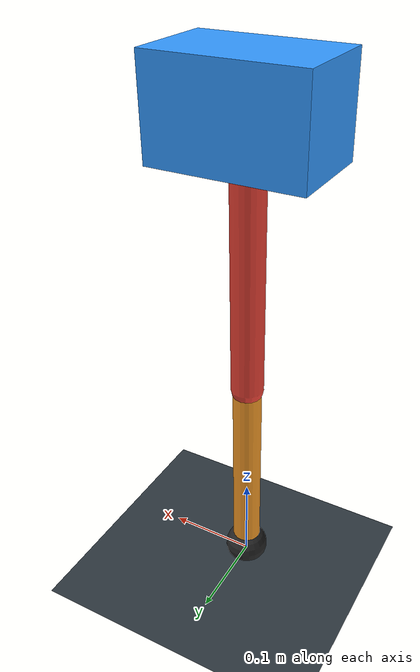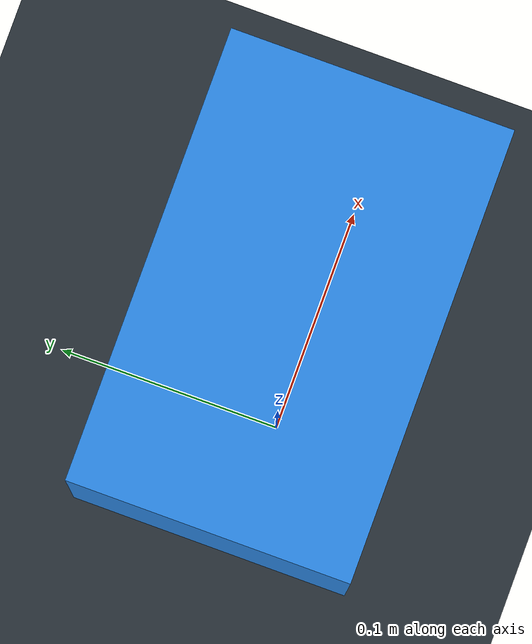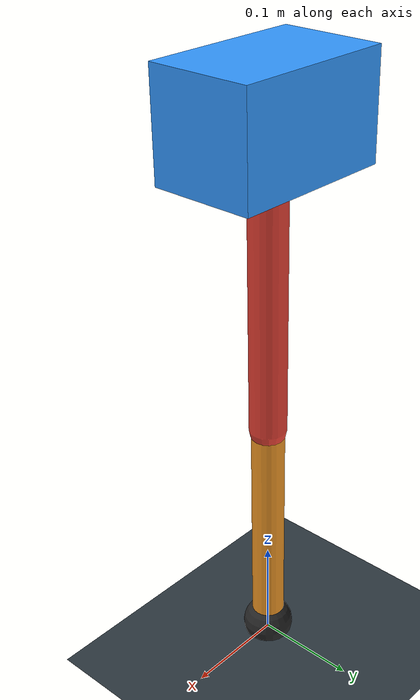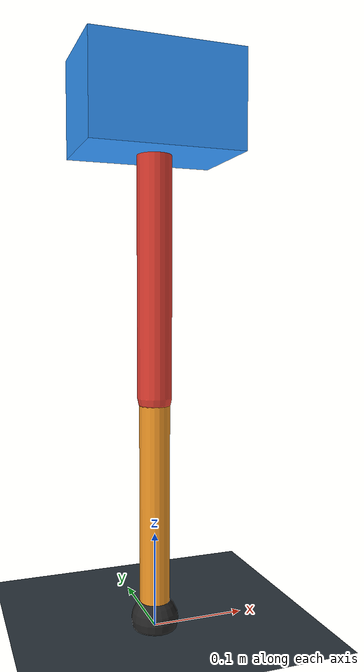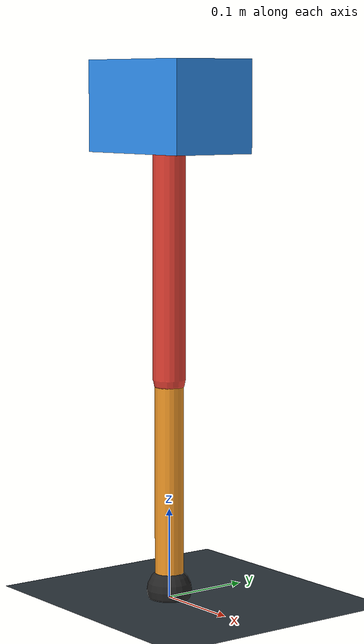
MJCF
<mujoco model="single_axis_two_bar">
  <compiler angle="radian" inertiafromgeom="true"/>
  <option timestep="0.001" integrator="implicitfast" gravity="0 0 -9.81"/>
  <default>
    <joint damping="0.08"/>
    <geom friction="1.2 0.01 0.0001" condim="3"/>
  </default>
  <worldbody>
    <geom name="floor" type="plane" size="5 5 0.1" rgba="0.18 0.22 0.25 1"/>
    <body name="carriage" pos="0 0 0.543046704936937">
      <joint name="pole_slide" type="slide" axis="0 0 1"/>
      <geom name="payload" type="box" size="0.08 0.05 0.05" mass="2.1501049687518288" rgba="0.2 0.6 1 1"/>
      <body name="thigh" pos="0 0 0">
        <joint name="hip" type="hinge" axis="0 1 0"/>
        <geom name="thigh_link" type="capsule" fromto="0 0 0 0 0 -0.2984278178442422" size="0.018" mass="0.2126337635897178" rgba="0.9 0.25 0.2 1"/>
        <body name="shank" pos="0 0 -0.2984278178442422">
          <joint name="knee" type="hinge" axis="0 1 0"/>
          <geom name="shank_link" type="capsule" fromto="0 0 0 0 0 -0.2356409501319815" size="0.016" mass="0.16789729068947434" rgba="0.95 0.6 0.15 1"/>
          <geom name="foot" type="sphere" pos="0 0 -0.2356409501319815" size="0.025" mass="0.03" rgba="0.15 0.15 0.15 1"/>
          <site name="toe" pos="0 0 -0.2356409501319815" size="0.008"/>
        </body>
      </body>
    </body>
  </worldbody>
  <actuator>
    <motor name="hip_motor" joint="hip" ctrlrange="-9.659148009921946 9.659148009921946"/>
    <motor name="knee_motor" joint="knee" ctrlrange="-44.75657711737055 44.75657711737055"/>
  </actuator>
</mujoco>
